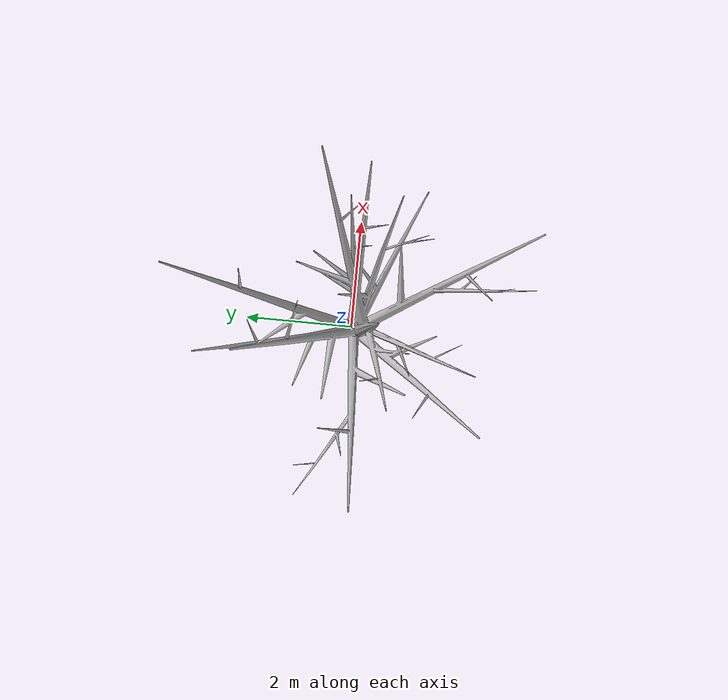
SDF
<?xml version="1.0" ?>
<sdf version="1.5">
  <model name="tree_type3">
    <static>true</static>
    <link name="link">
      <pose>0 0 0 0 0 0</pose>
        <collision name="collision">
        <geometry>
          <box>
            <size>0.3 0.3 10</size>
          </box>
        </geometry>
      </collision>
      <visual name="corn_stalk4_visual">
        <cast_shadows>true</cast_shadows>
        <geometry>
          <mesh>
              <uri>model://tree_type3/meshes/model.stl</uri>
            <scale>1 1 1</scale>
          </mesh>
        </geometry>
        <material>
          <script>
            <uri>model://tree_type3/materials/scripts</uri>
            <uri>model://tree_type3/materials/textures</uri>
            <name>tree_type3/Diffuse</name>
          </script>
        </material>
      </visual>
    </link>
  </model>
</sdf>
